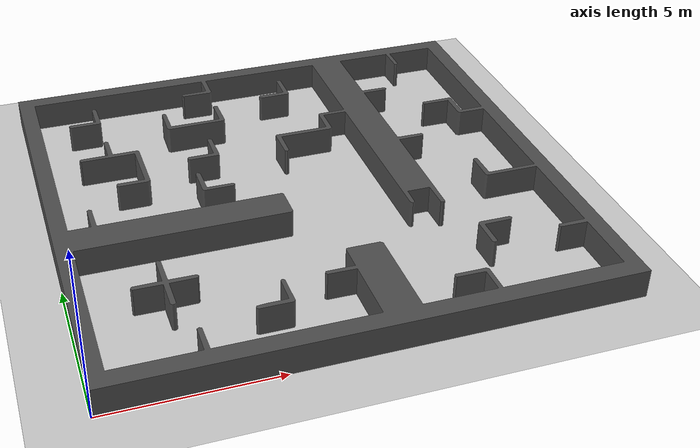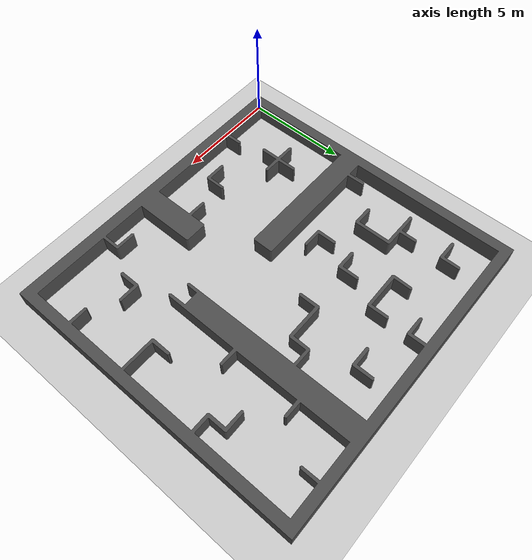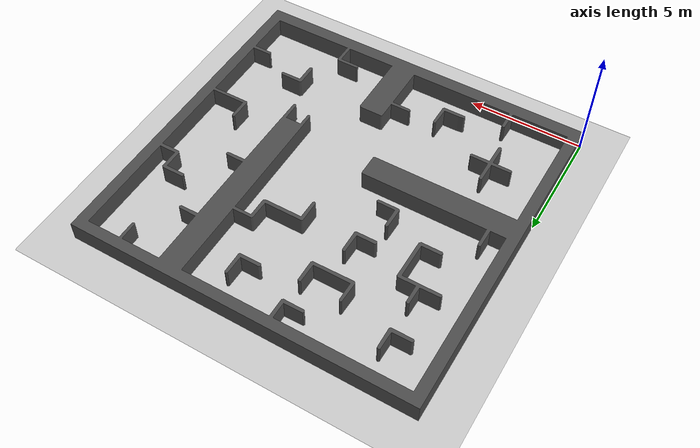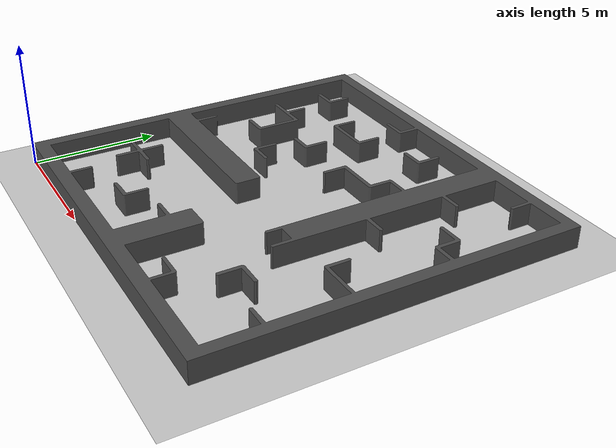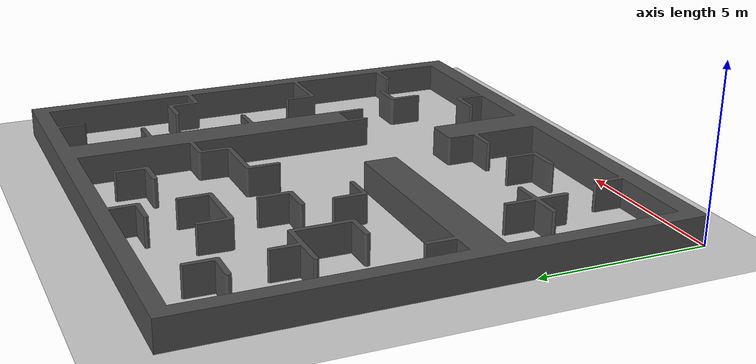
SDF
<?xml version="1.0" ?>
<sdf version="1.5">
  <world name="default">
    <!-- A global light source -->
    <include>
      <uri>model://sun</uri>
    </include>
    <!-- A ground plane -->
    <include>
      <uri>model://ground_plane</uri>
    </include>
    <!-- The STDR World -->
    <model name='turtlebot_2d_model'>
      <static>True</static>
      <link name='link_1'>
        <inertial>
          <mass>1</mass>
          <inertia>
            <ixx>0.166667</ixx>
            <ixy>0</ixy>
            <ixz>0</ixz>
            <iyy>0.166667</iyy>
            <iyz>0</iyz>
            <izz>0.166667</izz>
          </inertia>
        </inertial>
        <pose>0 0 0 0 0 0</pose>
        <visual name='visual'>
          <pose>0 0 0 0 -0 0</pose>
          <geometry>
            <mesh>
              <uri>file://meshes/turtlebot_2d_link.dae</uri>
            </mesh>
          </geometry>
          <material>
            <lighting>1</lighting>
            <script>
              <uri>file://media/materials/scripts/gazebo.material</uri>
              <name>Gazebo/DarkGrey</name>
            </script>
            <shader type='pixel'/>
          </material>
          <transparency>0</transparency>
          <cast_shadows>1</cast_shadows>
        </visual>
        <collision name='collision'>
          <laser_retro>0</laser_retro>
          <max_contacts>10</max_contacts>
          <pose>0 0 0 0 -0 0</pose>
          <geometry>
            <mesh>
              <uri>file://meshes/turtlebot_2d_link.dae</uri>
            </mesh>
          </geometry>
        </collision>
      </link>
      <static>0</static>
      <allow_auto_disable>1</allow_auto_disable>
    </model>
    <gui fullscreen='0'>
      <camera name='user_camera'>
        <pose>7.75 7.46 20 -1.57037 1.57 2.5e-05</pose>
        <projection_type>orthographic</projection_type>
      </camera>
    </gui>
  </world>
</sdf>
